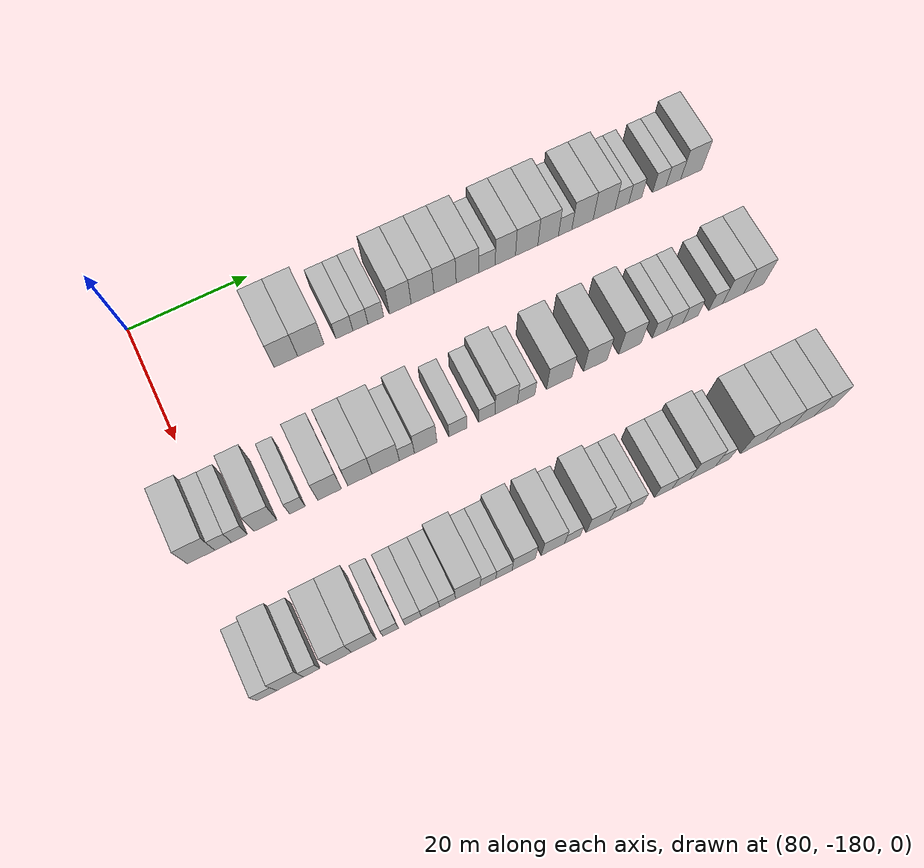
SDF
<sdf version="1.6">
 <world name="default">
  <model name="building_615">
   <static>1</static>
   <pose>91.0000 -160.2388 0 0.000000 0.000000 0.000000</pose>
   <link name="link">
    <pose>0 0 4.50 0 0 0</pose>
    <collision name="collision"><geometry><box><size>10.0000 3.9383 9.0000</size></box></geometry></collision>
    <visual name="visual">
     <cast_shadows>0</cast_shadows>
     <geometry><box><size>10.0000 3.9383 9.0000</size></box></geometry>
     <material>
      <script>
       <uri>model://HANNAS_wall/materials/scripts</uri>
       <uri>model://HANNAS_wall/materials/textures</uri>
       <name>vrc/HANNAS_wall</name>
      </script>
     </material>
    </visual>
   </link>
  </model>
  <model name="building_616">
   <static>1</static>
   <pose>91.0000 -156.0533 0 0.000000 0.000000 0.000000</pose>
   <link name="link">
    <pose>0 0 4.50 0 0 0</pose>
    <collision name="collision"><geometry><box><size>10.0000 4.4327 9.0000</size></box></geometry></collision>
    <visual name="visual">
     <cast_shadows>0</cast_shadows>
     <geometry><box><size>10.0000 4.4327 9.0000</size></box></geometry>
     <material>
      <script>
       <uri>model://HANNAS_wall/materials/scripts</uri>
       <uri>model://HANNAS_wall/materials/textures</uri>
       <name>vrc/HANNAS_wall</name>
      </script>
     </material>
    </visual>
   </link>
  </model>
  <model name="building_617">
   <static>1</static>
   <pose>91.0000 -150.3826 0 0.000000 0.000000 0.000000</pose>
   <link name="link">
    <pose>0 0 3.00 0 0 0</pose>
    <collision name="collision"><geometry><box><size>10.0000 2.9088 6.0000</size></box></geometry></collision>
    <visual name="visual">
     <cast_shadows>0</cast_shadows>
     <geometry><box><size>10.0000 2.9088 6.0000</size></box></geometry>
     <material>
      <script>
       <uri>model://HANNAS_wall/materials/scripts</uri>
       <uri>model://HANNAS_wall/materials/textures</uri>
       <name>vrc/HANNAS_wall</name>
      </script>
     </material>
    </visual>
   </link>
  </model>
  <model name="building_618">
   <static>1</static>
   <pose>91.0000 -147.6462 0 0.000000 0.000000 0.000000</pose>
   <link name="link">
    <pose>0 0 3.00 0 0 0</pose>
    <collision name="collision"><geometry><box><size>10.0000 2.5639 6.0000</size></box></geometry></collision>
    <visual name="visual">
     <cast_shadows>0</cast_shadows>
     <geometry><box><size>10.0000 2.5639 6.0000</size></box></geometry>
     <material>
      <script>
       <uri>model://HANNAS_wall/materials/scripts</uri>
       <uri>model://HANNAS_wall/materials/textures</uri>
       <name>vrc/HANNAS_wall</name>
      </script>
     </material>
    </visual>
   </link>
  </model>
  <model name="building_619">
   <static>1</static>
   <pose>91.0000 -145.0171 0 0.000000 0.000000 0.000000</pose>
   <link name="link">
    <pose>0 0 3.00 0 0 0</pose>
    <collision name="collision"><geometry><box><size>10.0000 2.6944 6.0000</size></box></geometry></collision>
    <visual name="visual">
     <cast_shadows>0</cast_shadows>
     <geometry><box><size>10.0000 2.6944 6.0000</size></box></geometry>
     <material>
      <script>
       <uri>model://HANNAS_wall/materials/scripts</uri>
       <uri>model://HANNAS_wall/materials/textures</uri>
       <name>vrc/HANNAS_wall</name>
      </script>
     </material>
    </visual>
   </link>
  </model>
  <model name="building_620">
   <static>1</static>
   <pose>91.0000 -140.8010 0 0.000000 0.000000 0.000000</pose>
   <link name="link">
    <pose>0 0 4.50 0 0 0</pose>
    <collision name="collision"><geometry><box><size>10.0000 3.7377 9.0000</size></box></geometry></collision>
    <visual name="visual">
     <cast_shadows>0</cast_shadows>
     <geometry><box><size>10.0000 3.7377 9.0000</size></box></geometry>
     <material>
      <script>
       <uri>model://HANNAS_wall/materials/scripts</uri>
       <uri>model://HANNAS_wall/materials/textures</uri>
       <name>vrc/HANNAS_wall</name>
      </script>
     </material>
    </visual>
   </link>
  </model>
  <model name="building_621">
   <static>1</static>
   <pose>91.0000 -136.9476 0 0.000000 0.000000 0.000000</pose>
   <link name="link">
    <pose>0 0 4.50 0 0 0</pose>
    <collision name="collision"><geometry><box><size>10.0000 3.9692 9.0000</size></box></geometry></collision>
    <visual name="visual">
     <cast_shadows>0</cast_shadows>
     <geometry><box><size>10.0000 3.9692 9.0000</size></box></geometry>
     <material>
      <script>
       <uri>model://HANNAS_wall/materials/scripts</uri>
       <uri>model://HANNAS_wall/materials/textures</uri>
       <name>vrc/HANNAS_wall</name>
      </script>
     </material>
    </visual>
   </link>
  </model>
  <model name="building_622">
   <static>1</static>
   <pose>91.0000 -133.0139 0 0.000000 0.000000 0.000000</pose>
   <link name="link">
    <pose>0 0 4.50 0 0 0</pose>
    <collision name="collision"><geometry><box><size>10.0000 3.8982 9.0000</size></box></geometry></collision>
    <visual name="visual">
     <cast_shadows>0</cast_shadows>
     <geometry><box><size>10.0000 3.8982 9.0000</size></box></geometry>
     <material>
      <script>
       <uri>model://HANNAS_wall/materials/scripts</uri>
       <uri>model://HANNAS_wall/materials/textures</uri>
       <name>vrc/HANNAS_wall</name>
      </script>
     </material>
    </visual>
   </link>
  </model>
  <model name="building_623">
   <static>1</static>
   <pose>91.0000 -129.0990 0 0.000000 0.000000 0.000000</pose>
   <link name="link">
    <pose>0 0 4.50 0 0 0</pose>
    <collision name="collision"><geometry><box><size>10.0000 3.9317 9.0000</size></box></geometry></collision>
    <visual name="visual">
     <cast_shadows>0</cast_shadows>
     <geometry><box><size>10.0000 3.9317 9.0000</size></box></geometry>
     <material>
      <script>
       <uri>model://HANNAS_wall/materials/scripts</uri>
       <uri>model://HANNAS_wall/materials/textures</uri>
       <name>vrc/HANNAS_wall</name>
      </script>
     </material>
    </visual>
   </link>
  </model>
  <model name="building_624">
   <static>1</static>
   <pose>91.0000 -125.6555 0 0.000000 0.000000 0.000000</pose>
   <link name="link">
    <pose>0 0 3.00 0 0 0</pose>
    <collision name="collision"><geometry><box><size>10.0000 2.9554 6.0000</size></box></geometry></collision>
    <visual name="visual">
     <cast_shadows>0</cast_shadows>
     <geometry><box><size>10.0000 2.9554 6.0000</size></box></geometry>
     <material>
      <script>
       <uri>model://HANNAS_wall/materials/scripts</uri>
       <uri>model://HANNAS_wall/materials/textures</uri>
       <name>vrc/HANNAS_wall</name>
      </script>
     </material>
    </visual>
   </link>
  </model>
  <model name="building_625">
   <static>1</static>
   <pose>91.0000 -122.3657 0 0.000000 0.000000 0.000000</pose>
   <link name="link">
    <pose>0 0 4.50 0 0 0</pose>
    <collision name="collision"><geometry><box><size>10.0000 3.6241 9.0000</size></box></geometry></collision>
    <visual name="visual">
     <cast_shadows>0</cast_shadows>
     <geometry><box><size>10.0000 3.6241 9.0000</size></box></geometry>
     <material>
      <script>
       <uri>model://HANNAS_wall/materials/scripts</uri>
       <uri>model://HANNAS_wall/materials/textures</uri>
       <name>vrc/HANNAS_wall</name>
      </script>
     </material>
    </visual>
   </link>
  </model>
  <model name="building_626">
   <static>1</static>
   <pose>91.0000 -118.5366 0 0.000000 0.000000 0.000000</pose>
   <link name="link">
    <pose>0 0 4.50 0 0 0</pose>
    <collision name="collision"><geometry><box><size>10.0000 4.0340 9.0000</size></box></geometry></collision>
    <visual name="visual">
     <cast_shadows>0</cast_shadows>
     <geometry><box><size>10.0000 4.0340 9.0000</size></box></geometry>
     <material>
      <script>
       <uri>model://HANNAS_wall/materials/scripts</uri>
       <uri>model://HANNAS_wall/materials/textures</uri>
       <name>vrc/HANNAS_wall</name>
      </script>
     </material>
    </visual>
   </link>
  </model>
  <model name="building_627">
   <static>1</static>
   <pose>91.0000 -114.6606 0 0.000000 0.000000 0.000000</pose>
   <link name="link">
    <pose>0 0 4.50 0 0 0</pose>
    <collision name="collision"><geometry><box><size>10.0000 3.7181 9.0000</size></box></geometry></collision>
    <visual name="visual">
     <cast_shadows>0</cast_shadows>
     <geometry><box><size>10.0000 3.7181 9.0000</size></box></geometry>
     <material>
      <script>
       <uri>model://HANNAS_wall/materials/scripts</uri>
       <uri>model://HANNAS_wall/materials/textures</uri>
       <name>vrc/HANNAS_wall</name>
      </script>
     </material>
    </visual>
   </link>
  </model>
  <model name="building_628">
   <static>1</static>
   <pose>91.0000 -111.5793 0 0.000000 0.000000 0.000000</pose>
   <link name="link">
    <pose>0 0 3.00 0 0 0</pose>
    <collision name="collision"><geometry><box><size>10.0000 2.4445 6.0000</size></box></geometry></collision>
    <visual name="visual">
     <cast_shadows>0</cast_shadows>
     <geometry><box><size>10.0000 2.4445 6.0000</size></box></geometry>
     <material>
      <script>
       <uri>model://HANNAS_wall/materials/scripts</uri>
       <uri>model://HANNAS_wall/materials/textures</uri>
       <name>vrc/HANNAS_wall</name>
      </script>
     </material>
    </visual>
   </link>
  </model>
  <model name="building_629">
   <static>1</static>
   <pose>91.0000 -108.4116 0 0.000000 0.000000 0.000000</pose>
   <link name="link">
    <pose>0 0 4.50 0 0 0</pose>
    <collision name="collision"><geometry><box><size>10.0000 3.8909 9.0000</size></box></geometry></collision>
    <visual name="visual">
     <cast_shadows>0</cast_shadows>
     <geometry><box><size>10.0000 3.8909 9.0000</size></box></geometry>
     <material>
      <script>
       <uri>model://HANNAS_wall/materials/scripts</uri>
       <uri>model://HANNAS_wall/materials/textures</uri>
       <name>vrc/HANNAS_wall</name>
      </script>
     </material>
    </visual>
   </link>
  </model>
  <model name="building_630">
   <static>1</static>
   <pose>91.0000 -104.4601 0 0.000000 0.000000 0.000000</pose>
   <link name="link">
    <pose>0 0 4.50 0 0 0</pose>
    <collision name="collision"><geometry><box><size>10.0000 4.0120 9.0000</size></box></geometry></collision>
    <visual name="visual">
     <cast_shadows>0</cast_shadows>
     <geometry><box><size>10.0000 4.0120 9.0000</size></box></geometry>
     <material>
      <script>
       <uri>model://HANNAS_wall/materials/scripts</uri>
       <uri>model://HANNAS_wall/materials/textures</uri>
       <name>vrc/HANNAS_wall</name>
      </script>
     </material>
    </visual>
   </link>
  </model>
  <model name="building_631">
   <static>1</static>
   <pose>91.0000 -101.1716 0 0.000000 0.000000 0.000000</pose>
   <link name="link">
    <pose>0 0 3.00 0 0 0</pose>
    <collision name="collision"><geometry><box><size>10.0000 2.5650 6.0000</size></box></geometry></collision>
    <visual name="visual">
     <cast_shadows>0</cast_shadows>
     <geometry><box><size>10.0000 2.5650 6.0000</size></box></geometry>
     <material>
      <script>
       <uri>model://HANNAS_wall/materials/scripts</uri>
       <uri>model://HANNAS_wall/materials/textures</uri>
       <name>vrc/HANNAS_wall</name>
      </script>
     </material>
    </visual>
   </link>
  </model>
  <model name="building_632">
   <static>1</static>
   <pose>91.0000 -98.6670 0 0.000000 0.000000 0.000000</pose>
   <link name="link">
    <pose>0 0 3.00 0 0 0</pose>
    <collision name="collision"><geometry><box><size>10.0000 2.4441 6.0000</size></box></geometry></collision>
    <visual name="visual">
     <cast_shadows>0</cast_shadows>
     <geometry><box><size>10.0000 2.4441 6.0000</size></box></geometry>
     <material>
      <script>
       <uri>model://HANNAS_wall/materials/scripts</uri>
       <uri>model://HANNAS_wall/materials/textures</uri>
       <name>vrc/HANNAS_wall</name>
      </script>
     </material>
    </visual>
   </link>
  </model>
  <model name="building_633">
   <static>1</static>
   <pose>91.0000 -94.1853 0 0.000000 0.000000 0.000000</pose>
   <link name="link">
    <pose>0 0 3.00 0 0 0</pose>
    <collision name="collision"><geometry><box><size>10.0000 2.5194 6.0000</size></box></geometry></collision>
    <visual name="visual">
     <cast_shadows>0</cast_shadows>
     <geometry><box><size>10.0000 2.5194 6.0000</size></box></geometry>
     <material>
      <script>
       <uri>model://HANNAS_wall/materials/scripts</uri>
       <uri>model://HANNAS_wall/materials/textures</uri>
       <name>vrc/HANNAS_wall</name>
      </script>
     </material>
    </visual>
   </link>
  </model>
  <model name="building_634">
   <static>1</static>
   <pose>91.0000 -91.5440 0 0.000000 0.000000 0.000000</pose>
   <link name="link">
    <pose>0 0 3.00 0 0 0</pose>
    <collision name="collision"><geometry><box><size>10.0000 2.7632 6.0000</size></box></geometry></collision>
    <visual name="visual">
     <cast_shadows>0</cast_shadows>
     <geometry><box><size>10.0000 2.7632 6.0000</size></box></geometry>
     <material>
      <script>
       <uri>model://HANNAS_wall/materials/scripts</uri>
       <uri>model://HANNAS_wall/materials/textures</uri>
       <name>vrc/HANNAS_wall</name>
      </script>
     </material>
    </visual>
   </link>
  </model>
  <model name="building_635">
   <static>1</static>
   <pose>91.0000 -88.1597 0 0.000000 0.000000 0.000000</pose>
   <link name="link">
    <pose>0 0 4.50 0 0 0</pose>
    <collision name="collision"><geometry><box><size>10.0000 4.0055 9.0000</size></box></geometry></collision>
    <visual name="visual">
     <cast_shadows>0</cast_shadows>
     <geometry><box><size>10.0000 4.0055 9.0000</size></box></geometry>
     <material>
      <script>
       <uri>model://HANNAS_wall/materials/scripts</uri>
       <uri>model://HANNAS_wall/materials/textures</uri>
       <name>vrc/HANNAS_wall</name>
      </script>
     </material>
    </visual>
   </link>
  </model>
  <model name="building_785">
   <static>1</static>
   <pose>113.0000 -183.1723 0 0.000000 0.000000 0.000000</pose>
   <link name="link">
    <pose>0 0 4.50 0 0 0</pose>
    <collision name="collision"><geometry><box><size>10.0000 4.2927 9.0000</size></box></geometry></collision>
    <visual name="visual">
     <cast_shadows>0</cast_shadows>
     <geometry><box><size>10.0000 4.2927 9.0000</size></box></geometry>
     <material>
      <script>
       <uri>model://HANNAS_wall/materials/scripts</uri>
       <uri>model://HANNAS_wall/materials/textures</uri>
       <name>vrc/HANNAS_wall</name>
      </script>
     </material>
    </visual>
   </link>
  </model>
  <model name="building_786">
   <static>1</static>
   <pose>113.0000 -179.7197 0 0.000000 0.000000 0.000000</pose>
   <link name="link">
    <pose>0 0 3.00 0 0 0</pose>
    <collision name="collision"><geometry><box><size>10.0000 2.6125 6.0000</size></box></geometry></collision>
    <visual name="visual">
     <cast_shadows>0</cast_shadows>
     <geometry><box><size>10.0000 2.6125 6.0000</size></box></geometry>
     <material>
      <script>
       <uri>model://HANNAS_wall/materials/scripts</uri>
       <uri>model://HANNAS_wall/materials/textures</uri>
       <name>vrc/HANNAS_wall</name>
      </script>
     </material>
    </visual>
   </link>
  </model>
  <model name="building_787">
   <static>1</static>
   <pose>113.0000 -177.1699 0 0.000000 0.000000 0.000000</pose>
   <link name="link">
    <pose>0 0 3.00 0 0 0</pose>
    <collision name="collision"><geometry><box><size>10.0000 2.4870 6.0000</size></box></geometry></collision>
    <visual name="visual">
     <cast_shadows>0</cast_shadows>
     <geometry><box><size>10.0000 2.4870 6.0000</size></box></geometry>
     <material>
      <script>
       <uri>model://HANNAS_wall/materials/scripts</uri>
       <uri>model://HANNAS_wall/materials/textures</uri>
       <name>vrc/HANNAS_wall</name>
      </script>
     </material>
    </visual>
   </link>
  </model>
  <model name="building_788">
   <static>1</static>
   <pose>113.0000 -173.0924 0 0.000000 0.000000 0.000000</pose>
   <link name="link">
    <pose>0 0 4.50 0 0 0</pose>
    <collision name="collision"><geometry><box><size>10.0000 3.6681 9.0000</size></box></geometry></collision>
    <visual name="visual">
     <cast_shadows>0</cast_shadows>
     <geometry><box><size>10.0000 3.6681 9.0000</size></box></geometry>
     <material>
      <script>
       <uri>model://HANNAS_wall/materials/scripts</uri>
       <uri>model://HANNAS_wall/materials/textures</uri>
       <name>vrc/HANNAS_wall</name>
      </script>
     </material>
    </visual>
   </link>
  </model>
  <model name="building_789">
   <static>1</static>
   <pose>113.0000 -167.9952 0 0.000000 0.000000 0.000000</pose>
   <link name="link">
    <pose>0 0 3.00 0 0 0</pose>
    <collision name="collision"><geometry><box><size>10.0000 2.5264 6.0000</size></box></geometry></collision>
    <visual name="visual">
     <cast_shadows>0</cast_shadows>
     <geometry><box><size>10.0000 2.5264 6.0000</size></box></geometry>
     <material>
      <script>
       <uri>model://HANNAS_wall/materials/scripts</uri>
       <uri>model://HANNAS_wall/materials/textures</uri>
       <name>vrc/HANNAS_wall</name>
      </script>
     </material>
    </visual>
   </link>
  </model>
  <model name="building_790">
   <static>1</static>
   <pose>113.0000 -162.8276 0 0.000000 0.000000 0.000000</pose>
   <link name="link">
    <pose>0 0 4.50 0 0 0</pose>
    <collision name="collision"><geometry><box><size>10.0000 3.8087 9.0000</size></box></geometry></collision>
    <visual name="visual">
     <cast_shadows>0</cast_shadows>
     <geometry><box><size>10.0000 3.8087 9.0000</size></box></geometry>
     <material>
      <script>
       <uri>model://HANNAS_wall/materials/scripts</uri>
       <uri>model://HANNAS_wall/materials/textures</uri>
       <name>vrc/HANNAS_wall</name>
      </script>
     </material>
    </visual>
   </link>
  </model>
  <model name="building_791">
   <static>1</static>
   <pose>113.0000 -157.9493 0 0.000000 0.000000 0.000000</pose>
   <link name="link">
    <pose>0 0 4.50 0 0 0</pose>
    <collision name="collision"><geometry><box><size>10.0000 3.9480 9.0000</size></box></geometry></collision>
    <visual name="visual">
     <cast_shadows>0</cast_shadows>
     <geometry><box><size>10.0000 3.9480 9.0000</size></box></geometry>
     <material>
      <script>
       <uri>model://HANNAS_wall/materials/scripts</uri>
       <uri>model://HANNAS_wall/materials/textures</uri>
       <name>vrc/HANNAS_wall</name>
      </script>
     </material>
    </visual>
   </link>
  </model>
  <model name="building_792">
   <static>1</static>
   <pose>113.0000 -153.7271 0 0.000000 0.000000 0.000000</pose>
   <link name="link">
    <pose>0 0 4.50 0 0 0</pose>
    <collision name="collision"><geometry><box><size>10.0000 4.4963 9.0000</size></box></geometry></collision>
    <visual name="visual">
     <cast_shadows>0</cast_shadows>
     <geometry><box><size>10.0000 4.4963 9.0000</size></box></geometry>
     <material>
      <script>
       <uri>model://HANNAS_wall/materials/scripts</uri>
       <uri>model://HANNAS_wall/materials/textures</uri>
       <name>vrc/HANNAS_wall</name>
      </script>
     </material>
    </visual>
   </link>
  </model>
  <model name="building_793">
   <static>1</static>
   <pose>113.0000 -150.2381 0 0.000000 0.000000 0.000000</pose>
   <link name="link">
    <pose>0 0 3.00 0 0 0</pose>
    <collision name="collision"><geometry><box><size>10.0000 2.4816 6.0000</size></box></geometry></collision>
    <visual name="visual">
     <cast_shadows>0</cast_shadows>
     <geometry><box><size>10.0000 2.4816 6.0000</size></box></geometry>
     <material>
      <script>
       <uri>model://HANNAS_wall/materials/scripts</uri>
       <uri>model://HANNAS_wall/materials/textures</uri>
       <name>vrc/HANNAS_wall</name>
      </script>
     </material>
    </visual>
   </link>
  </model>
  <model name="building_794">
   <static>1</static>
   <pose>113.0000 -147.1256 0 0.000000 0.000000 0.000000</pose>
   <link name="link">
    <pose>0 0 4.50 0 0 0</pose>
    <collision name="collision"><geometry><box><size>10.0000 3.7433 9.0000</size></box></geometry></collision>
    <visual name="visual">
     <cast_shadows>0</cast_shadows>
     <geometry><box><size>10.0000 3.7433 9.0000</size></box></geometry>
     <material>
      <script>
       <uri>model://HANNAS_wall/materials/scripts</uri>
       <uri>model://HANNAS_wall/materials/textures</uri>
       <name>vrc/HANNAS_wall</name>
      </script>
     </material>
    </visual>
   </link>
  </model>
  <model name="building_795">
   <static>1</static>
   <pose>113.0000 -141.7554 0 0.000000 0.000000 0.000000</pose>
   <link name="link">
    <pose>0 0 3.00 0 0 0</pose>
    <collision name="collision"><geometry><box><size>10.0000 2.9971 6.0000</size></box></geometry></collision>
    <visual name="visual">
     <cast_shadows>0</cast_shadows>
     <geometry><box><size>10.0000 2.9971 6.0000</size></box></geometry>
     <material>
      <script>
       <uri>model://HANNAS_wall/materials/scripts</uri>
       <uri>model://HANNAS_wall/materials/textures</uri>
       <name>vrc/HANNAS_wall</name>
      </script>
     </material>
    </visual>
   </link>
  </model>
  <model name="building_796">
   <static>1</static>
   <pose>113.0000 -136.8973 0 0.000000 0.000000 0.000000</pose>
   <link name="link">
    <pose>0 0 3.00 0 0 0</pose>
    <collision name="collision"><geometry><box><size>10.0000 2.7191 6.0000</size></box></geometry></collision>
    <visual name="visual">
     <cast_shadows>0</cast_shadows>
     <geometry><box><size>10.0000 2.7191 6.0000</size></box></geometry>
     <material>
      <script>
       <uri>model://HANNAS_wall/materials/scripts</uri>
       <uri>model://HANNAS_wall/materials/textures</uri>
       <name>vrc/HANNAS_wall</name>
      </script>
     </material>
    </visual>
   </link>
  </model>
  <model name="building_797">
   <static>1</static>
   <pose>113.0000 -133.5950 0 0.000000 0.000000 0.000000</pose>
   <link name="link">
    <pose>0 0 4.50 0 0 0</pose>
    <collision name="collision"><geometry><box><size>10.0000 3.8855 9.0000</size></box></geometry></collision>
    <visual name="visual">
     <cast_shadows>0</cast_shadows>
     <geometry><box><size>10.0000 3.8855 9.0000</size></box></geometry>
     <material>
      <script>
       <uri>model://HANNAS_wall/materials/scripts</uri>
       <uri>model://HANNAS_wall/materials/textures</uri>
       <name>vrc/HANNAS_wall</name>
      </script>
     </material>
    </visual>
   </link>
  </model>
  <model name="building_798">
   <static>1</static>
   <pose>113.0000 -130.1797 0 0.000000 0.000000 0.000000</pose>
   <link name="link">
    <pose>0 0 3.00 0 0 0</pose>
    <collision name="collision"><geometry><box><size>10.0000 2.9449 6.0000</size></box></geometry></collision>
    <visual name="visual">
     <cast_shadows>0</cast_shadows>
     <geometry><box><size>10.0000 2.9449 6.0000</size></box></geometry>
     <material>
      <script>
       <uri>model://HANNAS_wall/materials/scripts</uri>
       <uri>model://HANNAS_wall/materials/textures</uri>
       <name>vrc/HANNAS_wall</name>
      </script>
     </material>
    </visual>
   </link>
  </model>
  <model name="building_799">
   <static>1</static>
   <pose>113.0000 -124.4978 0 0.000000 0.000000 0.000000</pose>
   <link name="link">
    <pose>0 0 4.50 0 0 0</pose>
    <collision name="collision"><geometry><box><size>10.0000 4.4190 9.0000</size></box></geometry></collision>
    <visual name="visual">
     <cast_shadows>0</cast_shadows>
     <geometry><box><size>10.0000 4.4190 9.0000</size></box></geometry>
     <material>
      <script>
       <uri>model://HANNAS_wall/materials/scripts</uri>
       <uri>model://HANNAS_wall/materials/textures</uri>
       <name>vrc/HANNAS_wall</name>
      </script>
     </material>
    </visual>
   </link>
  </model>
  <model name="building_800">
   <static>1</static>
   <pose>113.0000 -118.2136 0 0.000000 0.000000 0.000000</pose>
   <link name="link">
    <pose>0 0 4.50 0 0 0</pose>
    <collision name="collision"><geometry><box><size>10.0000 4.1495 9.0000</size></box></geometry></collision>
    <visual name="visual">
     <cast_shadows>0</cast_shadows>
     <geometry><box><size>10.0000 4.1495 9.0000</size></box></geometry>
     <material>
      <script>
       <uri>model://HANNAS_wall/materials/scripts</uri>
       <uri>model://HANNAS_wall/materials/textures</uri>
       <name>vrc/HANNAS_wall</name>
      </script>
     </material>
    </visual>
   </link>
  </model>
  <model name="building_801">
   <static>1</static>
   <pose>113.0000 -112.1593 0 0.000000 0.000000 0.000000</pose>
   <link name="link">
    <pose>0 0 4.50 0 0 0</pose>
    <collision name="collision"><geometry><box><size>10.0000 3.9590 9.0000</size></box></geometry></collision>
    <visual name="visual">
     <cast_shadows>0</cast_shadows>
     <geometry><box><size>10.0000 3.9590 9.0000</size></box></geometry>
     <material>
      <script>
       <uri>model://HANNAS_wall/materials/scripts</uri>
       <uri>model://HANNAS_wall/materials/textures</uri>
       <name>vrc/HANNAS_wall</name>
      </script>
     </material>
    </visual>
   </link>
  </model>
  <model name="building_802">
   <static>1</static>
   <pose>113.0000 -106.8857 0 0.000000 0.000000 0.000000</pose>
   <link name="link">
    <pose>0 0 3.00 0 0 0</pose>
    <collision name="collision"><geometry><box><size>10.0000 2.5884 6.0000</size></box></geometry></collision>
    <visual name="visual">
     <cast_shadows>0</cast_shadows>
     <geometry><box><size>10.0000 2.5884 6.0000</size></box></geometry>
     <material>
      <script>
       <uri>model://HANNAS_wall/materials/scripts</uri>
       <uri>model://HANNAS_wall/materials/textures</uri>
       <name>vrc/HANNAS_wall</name>
      </script>
     </material>
    </visual>
   </link>
  </model>
  <model name="building_803">
   <static>1</static>
   <pose>113.0000 -104.1394 0 0.000000 0.000000 0.000000</pose>
   <link name="link">
    <pose>0 0 3.00 0 0 0</pose>
    <collision name="collision"><geometry><box><size>10.0000 2.9041 6.0000</size></box></geometry></collision>
    <visual name="visual">
     <cast_shadows>0</cast_shadows>
     <geometry><box><size>10.0000 2.9041 6.0000</size></box></geometry>
     <material>
      <script>
       <uri>model://HANNAS_wall/materials/scripts</uri>
       <uri>model://HANNAS_wall/materials/textures</uri>
       <name>vrc/HANNAS_wall</name>
      </script>
     </material>
    </visual>
   </link>
  </model>
  <model name="building_804">
   <static>1</static>
   <pose>113.0000 -101.3430 0 0.000000 0.000000 0.000000</pose>
   <link name="link">
    <pose>0 0 3.00 0 0 0</pose>
    <collision name="collision"><geometry><box><size>10.0000 2.6887 6.0000</size></box></geometry></collision>
    <visual name="visual">
     <cast_shadows>0</cast_shadows>
     <geometry><box><size>10.0000 2.6887 6.0000</size></box></geometry>
     <material>
      <script>
       <uri>model://HANNAS_wall/materials/scripts</uri>
       <uri>model://HANNAS_wall/materials/textures</uri>
       <name>vrc/HANNAS_wall</name>
      </script>
     </material>
    </visual>
   </link>
  </model>
  <model name="building_805">
   <static>1</static>
   <pose>113.0000 -96.7770 0 0.000000 0.000000 0.000000</pose>
   <link name="link">
    <pose>0 0 3.00 0 0 0</pose>
    <collision name="collision"><geometry><box><size>10.0000 2.4434 6.0000</size></box></geometry></collision>
    <visual name="visual">
     <cast_shadows>0</cast_shadows>
     <geometry><box><size>10.0000 2.4434 6.0000</size></box></geometry>
     <material>
      <script>
       <uri>model://HANNAS_wall/materials/scripts</uri>
       <uri>model://HANNAS_wall/materials/textures</uri>
       <name>vrc/HANNAS_wall</name>
      </script>
     </material>
    </visual>
   </link>
  </model>
  <model name="building_806">
   <static>1</static>
   <pose>113.0000 -93.6052 0 0.000000 0.000000 0.000000</pose>
   <link name="link">
    <pose>0 0 4.50 0 0 0</pose>
    <collision name="collision"><geometry><box><size>10.0000 3.9003 9.0000</size></box></geometry></collision>
    <visual name="visual">
     <cast_shadows>0</cast_shadows>
     <geometry><box><size>10.0000 3.9003 9.0000</size></box></geometry>
     <material>
      <script>
       <uri>model://HANNAS_wall/materials/scripts</uri>
       <uri>model://HANNAS_wall/materials/textures</uri>
       <name>vrc/HANNAS_wall</name>
      </script>
     </material>
    </visual>
   </link>
  </model>
  <model name="building_807">
   <static>1</static>
   <pose>113.0000 -89.8057 0 0.000000 0.000000 0.000000</pose>
   <link name="link">
    <pose>0 0 4.50 0 0 0</pose>
    <collision name="collision"><geometry><box><size>10.0000 3.6987 9.0000</size></box></geometry></collision>
    <visual name="visual">
     <cast_shadows>0</cast_shadows>
     <geometry><box><size>10.0000 3.6987 9.0000</size></box></geometry>
     <material>
      <script>
       <uri>model://HANNAS_wall/materials/scripts</uri>
       <uri>model://HANNAS_wall/materials/textures</uri>
       <name>vrc/HANNAS_wall</name>
      </script>
     </material>
    </visual>
   </link>
  </model>
  <model name="building_973">
   <static>1</static>
   <pose>135.0000 -182.2691 0 0.000000 0.000000 0.000000</pose>
   <link name="link">
    <pose>0 0 3.00 0 0 0</pose>
    <collision name="collision"><geometry><box><size>10.0000 2.9649 6.0000</size></box></geometry></collision>
    <visual name="visual">
     <cast_shadows>0</cast_shadows>
     <geometry><box><size>10.0000 2.9649 6.0000</size></box></geometry>
     <material>
      <script>
       <uri>model://HANNAS_wall/materials/scripts</uri>
       <uri>model://HANNAS_wall/materials/textures</uri>
       <name>vrc/HANNAS_wall</name>
      </script>
     </material>
    </visual>
   </link>
  </model>
  <model name="building_974">
   <static>1</static>
   <pose>135.0000 -178.7892 0 0.000000 0.000000 0.000000</pose>
   <link name="link">
    <pose>0 0 4.50 0 0 0</pose>
    <collision name="collision"><geometry><box><size>10.0000 3.9949 9.0000</size></box></geometry></collision>
    <visual name="visual">
     <cast_shadows>0</cast_shadows>
     <geometry><box><size>10.0000 3.9949 9.0000</size></box></geometry>
     <material>
      <script>
       <uri>model://HANNAS_wall/materials/scripts</uri>
       <uri>model://HANNAS_wall/materials/textures</uri>
       <name>vrc/HANNAS_wall</name>
      </script>
     </material>
    </visual>
   </link>
  </model>
  <model name="building_975">
   <static>1</static>
   <pose>135.0000 -175.5124 0 0.000000 0.000000 0.000000</pose>
   <link name="link">
    <pose>0 0 3.00 0 0 0</pose>
    <collision name="collision"><geometry><box><size>10.0000 2.5586 6.0000</size></box></geometry></collision>
    <visual name="visual">
     <cast_shadows>0</cast_shadows>
     <geometry><box><size>10.0000 2.5586 6.0000</size></box></geometry>
     <material>
      <script>
       <uri>model://HANNAS_wall/materials/scripts</uri>
       <uri>model://HANNAS_wall/materials/textures</uri>
       <name>vrc/HANNAS_wall</name>
      </script>
     </material>
    </visual>
   </link>
  </model>
  <model name="building_976">
   <static>1</static>
   <pose>135.0000 -171.3359 0 0.000000 0.000000 0.000000</pose>
   <link name="link">
    <pose>0 0 4.50 0 0 0</pose>
    <collision name="collision"><geometry><box><size>10.0000 3.7944 9.0000</size></box></geometry></collision>
    <visual name="visual">
     <cast_shadows>0</cast_shadows>
     <geometry><box><size>10.0000 3.7944 9.0000</size></box></geometry>
     <material>
      <script>
       <uri>model://HANNAS_wall/materials/scripts</uri>
       <uri>model://HANNAS_wall/materials/textures</uri>
       <name>vrc/HANNAS_wall</name>
      </script>
     </material>
    </visual>
   </link>
  </model>
  <model name="building_977">
   <static>1</static>
   <pose>135.0000 -167.4867 0 0.000000 0.000000 0.000000</pose>
   <link name="link">
    <pose>0 0 4.50 0 0 0</pose>
    <collision name="collision"><geometry><box><size>10.0000 3.9040 9.0000</size></box></geometry></collision>
    <visual name="visual">
     <cast_shadows>0</cast_shadows>
     <geometry><box><size>10.0000 3.9040 9.0000</size></box></geometry>
     <material>
      <script>
       <uri>model://HANNAS_wall/materials/scripts</uri>
       <uri>model://HANNAS_wall/materials/textures</uri>
       <name>vrc/HANNAS_wall</name>
      </script>
     </material>
    </visual>
   </link>
  </model>
  <model name="building_978">
   <static>1</static>
   <pose>135.0000 -163.3211 0 0.000000 0.000000 0.000000</pose>
   <link name="link">
    <pose>0 0 3.00 0 0 0</pose>
    <collision name="collision"><geometry><box><size>10.0000 2.4273 6.0000</size></box></geometry></collision>
    <visual name="visual">
     <cast_shadows>0</cast_shadows>
     <geometry><box><size>10.0000 2.4273 6.0000</size></box></geometry>
     <material>
      <script>
       <uri>model://HANNAS_wall/materials/scripts</uri>
       <uri>model://HANNAS_wall/materials/textures</uri>
       <name>vrc/HANNAS_wall</name>
      </script>
     </material>
    </visual>
   </link>
  </model>
  <model name="building_979">
   <static>1</static>
   <pose>135.0000 -159.8273 0 0.000000 0.000000 0.000000</pose>
   <link name="link">
    <pose>0 0 3.00 0 0 0</pose>
    <collision name="collision"><geometry><box><size>10.0000 2.5602 6.0000</size></box></geometry></collision>
    <visual name="visual">
     <cast_shadows>0</cast_shadows>
     <geometry><box><size>10.0000 2.5602 6.0000</size></box></geometry>
     <material>
      <script>
       <uri>model://HANNAS_wall/materials/scripts</uri>
       <uri>model://HANNAS_wall/materials/textures</uri>
       <name>vrc/HANNAS_wall</name>
      </script>
     </material>
    </visual>
   </link>
  </model>
  <model name="building_980">
   <static>1</static>
   <pose>135.0000 -157.0886 0 0.000000 0.000000 0.000000</pose>
   <link name="link">
    <pose>0 0 3.00 0 0 0</pose>
    <collision name="collision"><geometry><box><size>10.0000 2.9173 6.0000</size></box></geometry></collision>
    <visual name="visual">
     <cast_shadows>0</cast_shadows>
     <geometry><box><size>10.0000 2.9173 6.0000</size></box></geometry>
     <material>
      <script>
       <uri>model://HANNAS_wall/materials/scripts</uri>
       <uri>model://HANNAS_wall/materials/textures</uri>
       <name>vrc/HANNAS_wall</name>
      </script>
     </material>
    </visual>
   </link>
  </model>
  <model name="building_981">
   <static>1</static>
   <pose>135.0000 -154.3815 0 0.000000 0.000000 0.000000</pose>
   <link name="link">
    <pose>0 0 3.00 0 0 0</pose>
    <collision name="collision"><geometry><box><size>10.0000 2.4969 6.0000</size></box></geometry></collision>
    <visual name="visual">
     <cast_shadows>0</cast_shadows>
     <geometry><box><size>10.0000 2.4969 6.0000</size></box></geometry>
     <material>
      <script>
       <uri>model://HANNAS_wall/materials/scripts</uri>
       <uri>model://HANNAS_wall/materials/textures</uri>
       <name>vrc/HANNAS_wall</name>
      </script>
     </material>
    </visual>
   </link>
  </model>
  <model name="building_982">
   <static>1</static>
   <pose>135.0000 -151.1389 0 0.000000 0.000000 0.000000</pose>
   <link name="link">
    <pose>0 0 4.50 0 0 0</pose>
    <collision name="collision"><geometry><box><size>10.0000 3.9884 9.0000</size></box></geometry></collision>
    <visual name="visual">
     <cast_shadows>0</cast_shadows>
     <geometry><box><size>10.0000 3.9884 9.0000</size></box></geometry>
     <material>
      <script>
       <uri>model://HANNAS_wall/materials/scripts</uri>
       <uri>model://HANNAS_wall/materials/textures</uri>
       <name>vrc/HANNAS_wall</name>
      </script>
     </material>
    </visual>
   </link>
  </model>
  <model name="building_983">
   <static>1</static>
   <pose>135.0000 -147.9017 0 0.000000 0.000000 0.000000</pose>
   <link name="link">
    <pose>0 0 3.00 0 0 0</pose>
    <collision name="collision"><geometry><box><size>10.0000 2.4860 6.0000</size></box></geometry></collision>
    <visual name="visual">
     <cast_shadows>0</cast_shadows>
     <geometry><box><size>10.0000 2.4860 6.0000</size></box></geometry>
     <material>
      <script>
       <uri>model://HANNAS_wall/materials/scripts</uri>
       <uri>model://HANNAS_wall/materials/textures</uri>
       <name>vrc/HANNAS_wall</name>
      </script>
     </material>
    </visual>
   </link>
  </model>
  <model name="building_984">
   <static>1</static>
   <pose>135.0000 -145.3621 0 0.000000 0.000000 0.000000</pose>
   <link name="link">
    <pose>0 0 3.00 0 0 0</pose>
    <collision name="collision"><geometry><box><size>10.0000 2.5932 6.0000</size></box></geometry></collision>
    <visual name="visual">
     <cast_shadows>0</cast_shadows>
     <geometry><box><size>10.0000 2.5932 6.0000</size></box></geometry>
     <material>
      <script>
       <uri>model://HANNAS_wall/materials/scripts</uri>
       <uri>model://HANNAS_wall/materials/textures</uri>
       <name>vrc/HANNAS_wall</name>
      </script>
     </material>
    </visual>
   </link>
  </model>
  <model name="building_985">
   <static>1</static>
   <pose>135.0000 -142.1881 0 0.000000 0.000000 0.000000</pose>
   <link name="link">
    <pose>0 0 4.50 0 0 0</pose>
    <collision name="collision"><geometry><box><size>10.0000 3.7550 9.0000</size></box></geometry></collision>
    <visual name="visual">
     <cast_shadows>0</cast_shadows>
     <geometry><box><size>10.0000 3.7550 9.0000</size></box></geometry>
     <material>
      <script>
       <uri>model://HANNAS_wall/materials/scripts</uri>
       <uri>model://HANNAS_wall/materials/textures</uri>
       <name>vrc/HANNAS_wall</name>
      </script>
     </material>
    </visual>
   </link>
  </model>
  <model name="building_986">
   <static>1</static>
   <pose>135.0000 -137.4134 0 0.000000 0.000000 0.000000</pose>
   <link name="link">
    <pose>0 0 4.50 0 0 0</pose>
    <collision name="collision"><geometry><box><size>10.0000 3.7944 9.0000</size></box></geometry></collision>
    <visual name="visual">
     <cast_shadows>0</cast_shadows>
     <geometry><box><size>10.0000 3.7944 9.0000</size></box></geometry>
     <material>
      <script>
       <uri>model://HANNAS_wall/materials/scripts</uri>
       <uri>model://HANNAS_wall/materials/textures</uri>
       <name>vrc/HANNAS_wall</name>
      </script>
     </material>
    </visual>
   </link>
  </model>
  <model name="building_987">
   <static>1</static>
   <pose>135.0000 -134.2166 0 0.000000 0.000000 0.000000</pose>
   <link name="link">
    <pose>0 0 3.00 0 0 0</pose>
    <collision name="collision"><geometry><box><size>10.0000 2.5992 6.0000</size></box></geometry></collision>
    <visual name="visual">
     <cast_shadows>0</cast_shadows>
     <geometry><box><size>10.0000 2.5992 6.0000</size></box></geometry>
     <material>
      <script>
       <uri>model://HANNAS_wall/materials/scripts</uri>
       <uri>model://HANNAS_wall/materials/textures</uri>
       <name>vrc/HANNAS_wall</name>
      </script>
     </material>
    </visual>
   </link>
  </model>
  <model name="building_988">
   <static>1</static>
   <pose>135.0000 -129.9950 0 0.000000 0.000000 0.000000</pose>
   <link name="link">
    <pose>0 0 4.50 0 0 0</pose>
    <collision name="collision"><geometry><box><size>10.0000 3.8440 9.0000</size></box></geometry></collision>
    <visual name="visual">
     <cast_shadows>0</cast_shadows>
     <geometry><box><size>10.0000 3.8440 9.0000</size></box></geometry>
     <material>
      <script>
       <uri>model://HANNAS_wall/materials/scripts</uri>
       <uri>model://HANNAS_wall/materials/textures</uri>
       <name>vrc/HANNAS_wall</name>
      </script>
     </material>
    </visual>
   </link>
  </model>
  <model name="building_989">
   <static>1</static>
   <pose>135.0000 -126.6206 0 0.000000 0.000000 0.000000</pose>
   <link name="link">
    <pose>0 0 3.00 0 0 0</pose>
    <collision name="collision"><geometry><box><size>10.0000 2.9048 6.0000</size></box></geometry></collision>
    <visual name="visual">
     <cast_shadows>0</cast_shadows>
     <geometry><box><size>10.0000 2.9048 6.0000</size></box></geometry>
     <material>
      <script>
       <uri>model://HANNAS_wall/materials/scripts</uri>
       <uri>model://HANNAS_wall/materials/textures</uri>
       <name>vrc/HANNAS_wall</name>
      </script>
     </material>
    </visual>
   </link>
  </model>
  <model name="building_990">
   <static>1</static>
   <pose>135.0000 -123.8024 0 0.000000 0.000000 0.000000</pose>
   <link name="link">
    <pose>0 0 3.00 0 0 0</pose>
    <collision name="collision"><geometry><box><size>10.0000 2.7316 6.0000</size></box></geometry></collision>
    <visual name="visual">
     <cast_shadows>0</cast_shadows>
     <geometry><box><size>10.0000 2.7316 6.0000</size></box></geometry>
     <material>
      <script>
       <uri>model://HANNAS_wall/materials/scripts</uri>
       <uri>model://HANNAS_wall/materials/textures</uri>
       <name>vrc/HANNAS_wall</name>
      </script>
     </material>
    </visual>
   </link>
  </model>
  <model name="building_991">
   <static>1</static>
   <pose>135.0000 -118.9431 0 0.000000 0.000000 0.000000</pose>
   <link name="link">
    <pose>0 0 3.00 0 0 0</pose>
    <collision name="collision"><geometry><box><size>10.0000 2.9869 6.0000</size></box></geometry></collision>
    <visual name="visual">
     <cast_shadows>0</cast_shadows>
     <geometry><box><size>10.0000 2.9869 6.0000</size></box></geometry>
     <material>
      <script>
       <uri>model://HANNAS_wall/materials/scripts</uri>
       <uri>model://HANNAS_wall/materials/textures</uri>
       <name>vrc/HANNAS_wall</name>
      </script>
     </material>
    </visual>
   </link>
  </model>
  <model name="building_992">
   <static>1</static>
   <pose>135.0000 -115.9515 0 0.000000 0.000000 0.000000</pose>
   <link name="link">
    <pose>0 0 3.00 0 0 0</pose>
    <collision name="collision"><geometry><box><size>10.0000 2.9964 6.0000</size></box></geometry></collision>
    <visual name="visual">
     <cast_shadows>0</cast_shadows>
     <geometry><box><size>10.0000 2.9964 6.0000</size></box></geometry>
     <material>
      <script>
       <uri>model://HANNAS_wall/materials/scripts</uri>
       <uri>model://HANNAS_wall/materials/textures</uri>
       <name>vrc/HANNAS_wall</name>
      </script>
     </material>
    </visual>
   </link>
  </model>
  <model name="building_993">
   <static>1</static>
   <pose>135.0000 -112.2704 0 0.000000 0.000000 0.000000</pose>
   <link name="link">
    <pose>0 0 4.50 0 0 0</pose>
    <collision name="collision"><geometry><box><size>10.0000 4.3658 9.0000</size></box></geometry></collision>
    <visual name="visual">
     <cast_shadows>0</cast_shadows>
     <geometry><box><size>10.0000 4.3658 9.0000</size></box></geometry>
     <material>
      <script>
       <uri>model://HANNAS_wall/materials/scripts</uri>
       <uri>model://HANNAS_wall/materials/textures</uri>
       <name>vrc/HANNAS_wall</name>
      </script>
     </material>
    </visual>
   </link>
  </model>
  <model name="building_994">
   <static>1</static>
   <pose>135.0000 -108.8799 0 0.000000 0.000000 0.000000</pose>
   <link name="link">
    <pose>0 0 3.00 0 0 0</pose>
    <collision name="collision"><geometry><box><size>10.0000 2.4153 6.0000</size></box></geometry></collision>
    <visual name="visual">
     <cast_shadows>0</cast_shadows>
     <geometry><box><size>10.0000 2.4153 6.0000</size></box></geometry>
     <material>
      <script>
       <uri>model://HANNAS_wall/materials/scripts</uri>
       <uri>model://HANNAS_wall/materials/textures</uri>
       <name>vrc/HANNAS_wall</name>
      </script>
     </material>
    </visual>
   </link>
  </model>
  <model name="building_995">
   <static>1</static>
   <pose>135.0000 -103.5155 0 0.000000 0.000000 0.000000</pose>
   <link name="link">
    <pose>0 0 4.50 0 0 0</pose>
    <collision name="collision"><geometry><box><size>10.0000 4.3134 9.0000</size></box></geometry></collision>
    <visual name="visual">
     <cast_shadows>0</cast_shadows>
     <geometry><box><size>10.0000 4.3134 9.0000</size></box></geometry>
     <material>
      <script>
       <uri>model://HANNAS_wall/materials/scripts</uri>
       <uri>model://HANNAS_wall/materials/textures</uri>
       <name>vrc/HANNAS_wall</name>
      </script>
     </material>
    </visual>
   </link>
  </model>
  <model name="building_996">
   <static>1</static>
   <pose>135.0000 -99.1297 0 0.000000 0.000000 0.000000</pose>
   <link name="link">
    <pose>0 0 4.50 0 0 0</pose>
    <collision name="collision"><geometry><box><size>10.0000 4.4583 9.0000</size></box></geometry></collision>
    <visual name="visual">
     <cast_shadows>0</cast_shadows>
     <geometry><box><size>10.0000 4.4583 9.0000</size></box></geometry>
     <material>
      <script>
       <uri>model://HANNAS_wall/materials/scripts</uri>
       <uri>model://HANNAS_wall/materials/textures</uri>
       <name>vrc/HANNAS_wall</name>
      </script>
     </material>
    </visual>
   </link>
  </model>
  <model name="building_997">
   <static>1</static>
   <pose>135.0000 -94.7764 0 0.000000 0.000000 0.000000</pose>
   <link name="link">
    <pose>0 0 4.50 0 0 0</pose>
    <collision name="collision"><geometry><box><size>10.0000 4.2482 9.0000</size></box></geometry></collision>
    <visual name="visual">
     <cast_shadows>0</cast_shadows>
     <geometry><box><size>10.0000 4.2482 9.0000</size></box></geometry>
     <material>
      <script>
       <uri>model://HANNAS_wall/materials/scripts</uri>
       <uri>model://HANNAS_wall/materials/textures</uri>
       <name>vrc/HANNAS_wall</name>
      </script>
     </material>
    </visual>
   </link>
  </model>
  <model name="building_998">
   <static>1</static>
   <pose>135.0000 -90.8314 0 0.000000 0.000000 0.000000</pose>
   <link name="link">
    <pose>0 0 4.50 0 0 0</pose>
    <collision name="collision"><geometry><box><size>10.0000 3.6418 9.0000</size></box></geometry></collision>
    <visual name="visual">
     <cast_shadows>0</cast_shadows>
     <geometry><box><size>10.0000 3.6418 9.0000</size></box></geometry>
     <material>
      <script>
       <uri>model://HANNAS_wall/materials/scripts</uri>
       <uri>model://HANNAS_wall/materials/textures</uri>
       <name>vrc/HANNAS_wall</name>
      </script>
     </material>
    </visual>
   </link>
  </model>
 </world>
</sdf>
